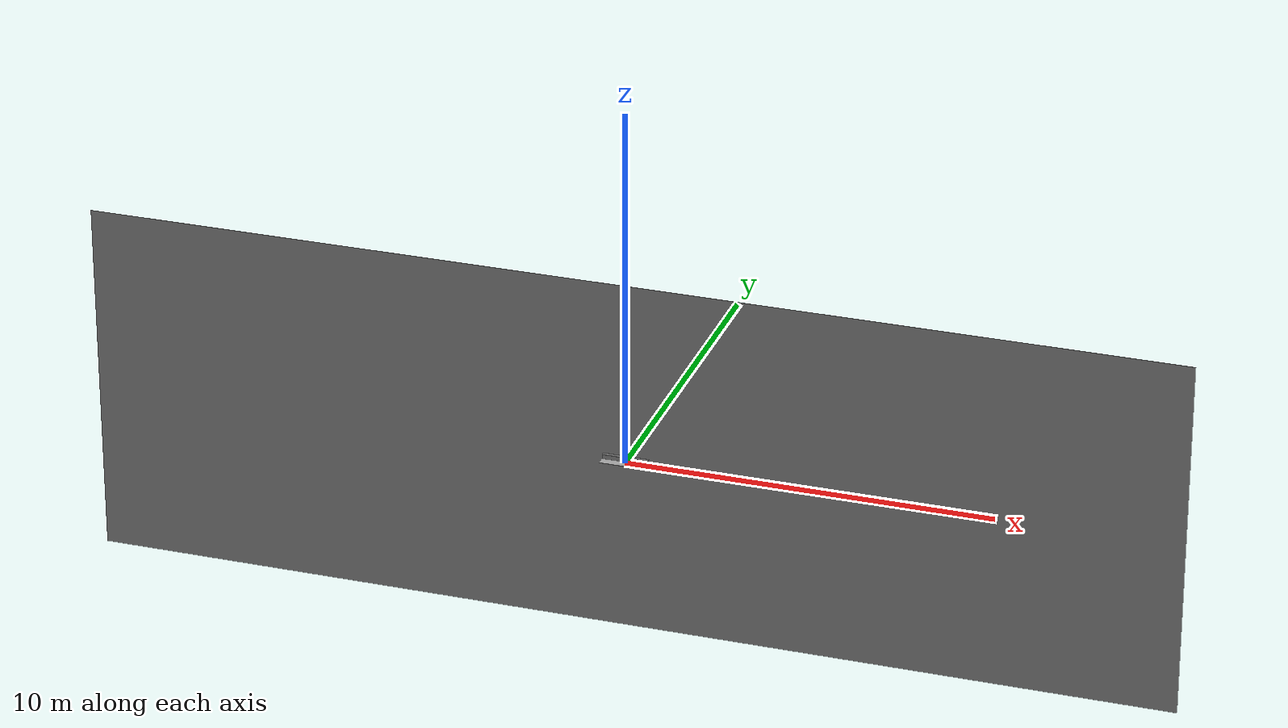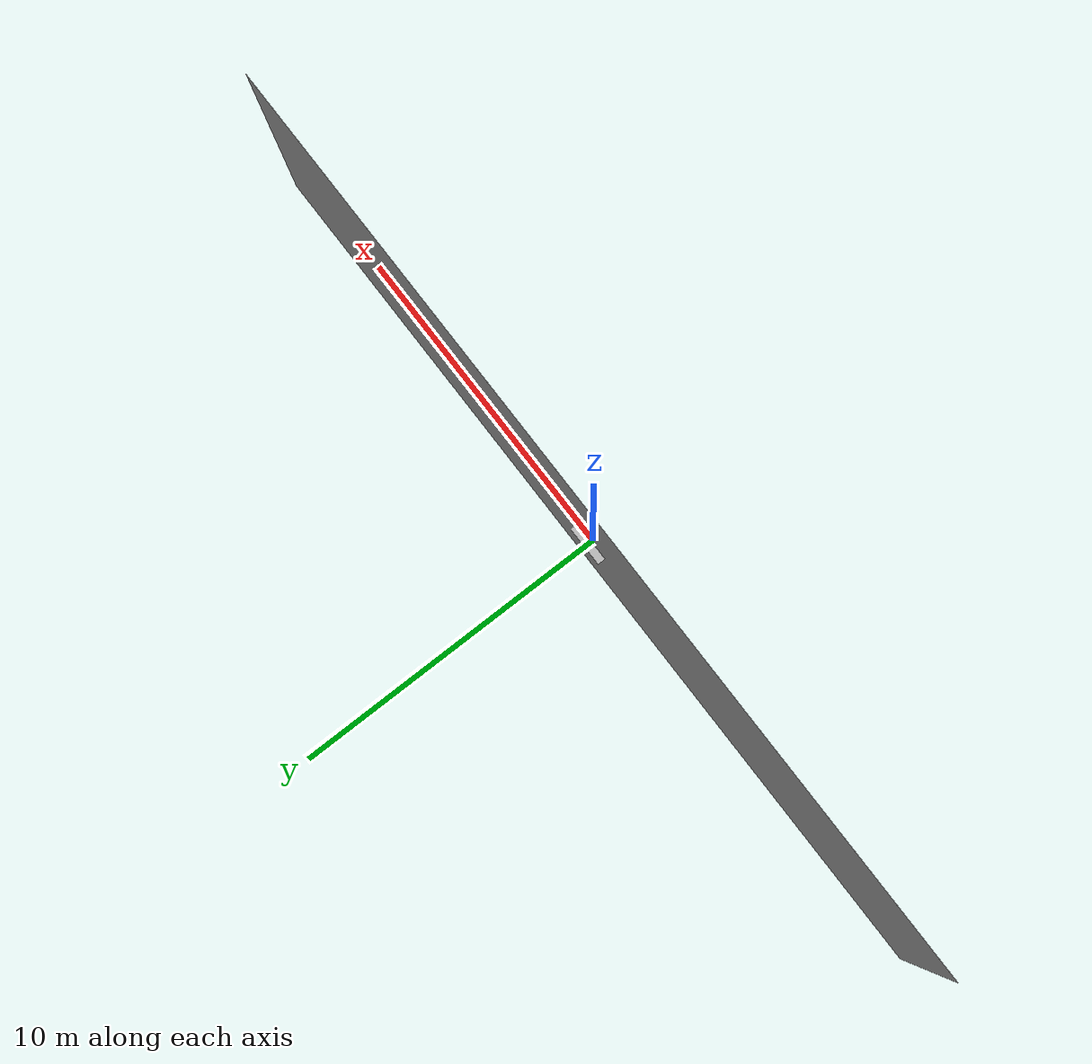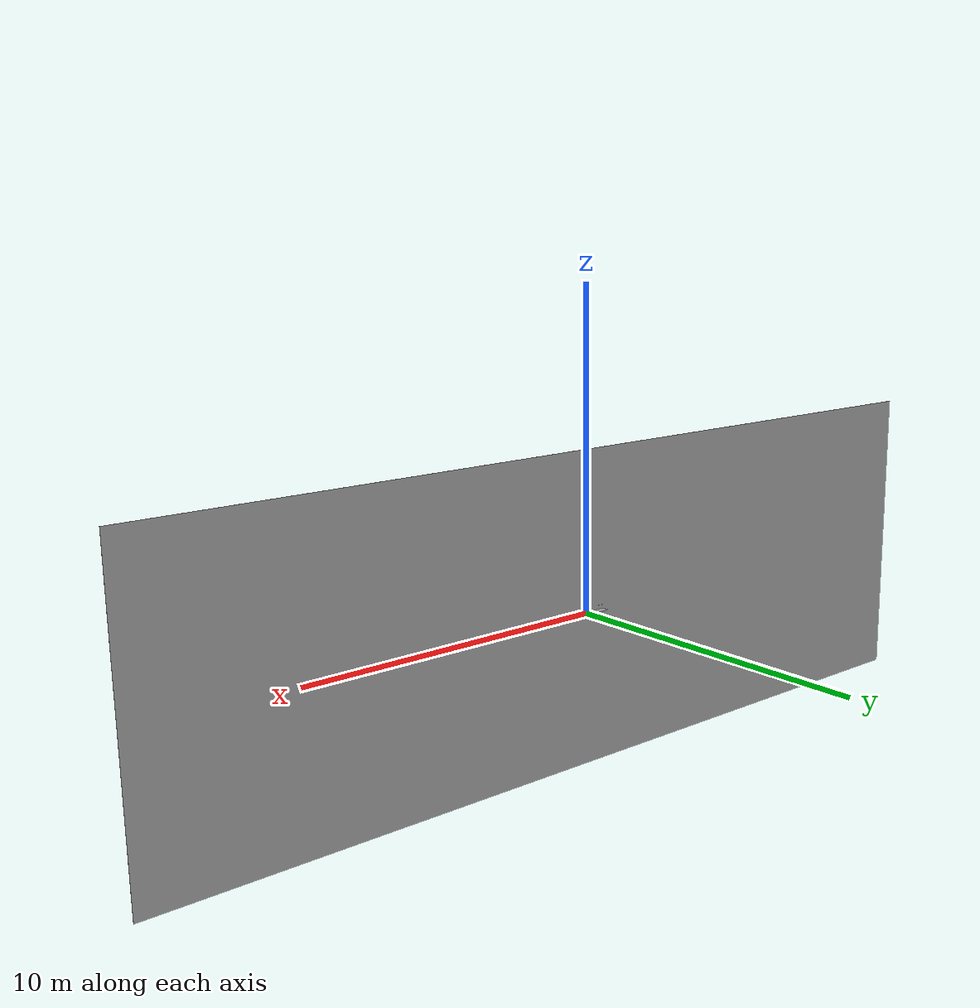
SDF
<?xml version='1.0'?>
<sdf version='1.6'>
  <model name='rockwall'>
    <link name='link'>
      <pose frame=''>0 0 0 0 -0 0</pose>
      <inertial>
        <mass>10</mass>
        <pose frame=''>0 0 0.08974 0 -0 0</pose>
        <inertia>
          <ixx>0.327091</ixx>
          <ixy>0</ixy>
          <ixz>0</ixz>
          <iyy>1.37417</iyy>
          <iyz>0</iyz>
          <izz>1.64109</izz>
        </inertia>
      </inertial>
      <self_collide>0</self_collide>
      <kinematic>0</kinematic>
      <gravity>1</gravity>
      <visual name='ModelPreview_1::link::visual_4'>
        <pose frame=''>0 -0.00249 0.18252 0 -0 0</pose>
        <geometry>
          <box>
            <size>1.27 0.1143 0.00462</size>
          </box>
        </geometry>
        <material>
          <ambient>0.46 0.46 0.46 1</ambient>
          <diffuse>0.46 0.46 0.46 1</diffuse>
          <specular>0 0 0 1</specular>
          <emissive>0 0 0 1</emissive>
          <script>
            <name>ModelPreview_1::link::top_MATERIAL_</name>
            <uri>__default__</uri>
          </script>
          <shader type='vertex'>
            <normal_map>__default__</normal_map>
          </shader>
        </material>
        <cast_shadows>1</cast_shadows>
        <transparency>0</transparency>
      </visual>
      <visual name='ModelPreview_1::link::visual_7'>
        <pose frame=''>0 -0.00249 0.18252 0 -0 0</pose>
        <geometry>
          <box>
            <size>1.27 0.1143 0.00462</size>
          </box>
        </geometry>
        <material>
          <ambient>0.46 0.46 0.46 1</ambient>
          <diffuse>0.46 0.46 0.46 1</diffuse>
          <specular>0 0 0 1</specular>
          <emissive>0 0 0 1</emissive>
          <script>
            <name>ModelPreview_1::link::top_MATERIAL_</name>
            <uri>__default__</uri>
          </script>
          <shader type='vertex'>
            <normal_map>__default__</normal_map>
          </shader>
        </material>
        <cast_shadows>1</cast_shadows>
        <transparency>0</transparency>
      </visual>
      <visual name='ModelPreview_1::link::visual_6'>
        <pose frame=''>0 -0.00249 0.18252 0 -0 0</pose>
        <geometry>
          <box>
            <size>1.27 0.1143 0.00462</size>
          </box>
        </geometry>
        <material>
          <ambient>0.46 0.46 0.46 1</ambient>
          <diffuse>0.46 0.46 0.46 1</diffuse>
          <specular>0 0 0 1</specular>
          <emissive>0 0 0 1</emissive>
          <script>
            <name>ModelPreview_1::link::top_MATERIAL_</name>
            <uri>__default__</uri>
          </script>
          <shader type='vertex'>
            <normal_map>__default__</normal_map>
          </shader>
        </material>
        <cast_shadows>1</cast_shadows>
        <transparency>0</transparency>
      </visual>
      <visual name='ModelPreview_1::link::visual_5'>
        <pose frame=''>0 -0.00249 0.18252 0 -0 0</pose>
        <geometry>
          <box>
            <size>1.27 0.1143 0.00462</size>
          </box>
        </geometry>
        <material>
          <ambient>0.46 0.46 0.46 1</ambient>
          <diffuse>0.46 0.46 0.46 1</diffuse>
          <specular>0 0 0 1</specular>
          <emissive>0 0 0 1</emissive>
          <script>
            <name>ModelPreview_1::link::top_MATERIAL_</name>
            <uri>__default__</uri>
          </script>
          <shader type='vertex'>
            <normal_map>__default__</normal_map>
          </shader>
        </material>
        <cast_shadows>1</cast_shadows>
        <transparency>0</transparency>
      </visual>
      <visual name='platform'>
        <pose frame=''>0 0 0.06432 0 -0 0</pose>
        <geometry>
          <box>
            <size>1.27 0.5969 0.003175</size>
          </box>
        </geometry>
        <cast_shadows>1</cast_shadows>
        <transparency>0</transparency>
        <material>
          <shader type='vertex'>
            <normal_map>__default__</normal_map>
          </shader>
        </material>
      </visual>
      <visual name='ModelPreview_1::link::visual_8'>
        <pose frame=''>0 -0.00249 0.18252 0 -0 0</pose>
        <geometry>
          <box>
            <size>1.27 0.1143 0.00462</size>
          </box>
        </geometry>
        <material>
          <ambient>0.46 0.46 0.46 1</ambient>
          <diffuse>0.46 0.46 0.46 1</diffuse>
          <specular>0 0 0 1</specular>
          <emissive>0 0 0 1</emissive>
          <script>
            <name>ModelPreview_1::link::top_MATERIAL_</name>
            <uri>__default__</uri>
          </script>
          <shader type='vertex'>
            <normal_map>__default__</normal_map>
          </shader>
        </material>
        <cast_shadows>1</cast_shadows>
        <transparency>0</transparency>
      </visual>
      <visual name='ModelPreview_1::link::visual_9'>
        <pose frame=''>0 -0.00249 0.18252 0 -0 0</pose>
        <geometry>
          <box>
            <size>1.27 0.1143 0.00462</size>
          </box>
        </geometry>
        <material>
          <ambient>0.46 0.46 0.46 1</ambient>
          <diffuse>0.46 0.46 0.46 1</diffuse>
          <specular>0 0 0 1</specular>
          <emissive>0 0 0 1</emissive>
          <script>
            <name>ModelPreview_1::link::top_MATERIAL_</name>
            <uri>__default__</uri>
          </script>
          <shader type='vertex'>
            <normal_map>__default__</normal_map>
          </shader>
        </material>
        <cast_shadows>1</cast_shadows>
        <transparency>0</transparency>
      </visual>
      <visual name='up1'>
        <pose frame=''>0 0.05166 0.12537 0 -0 0</pose>
        <geometry>
          <box>
            <size>30 0.00462 10</size>
          </box>
        </geometry>
        <material>
          <ambient>0.46 0.46 0.46 1</ambient>
          <diffuse>0.46 0.46 0.46 1</diffuse>
          <specular>0 0 0 1</specular>
          <emissive>0 0 0 1</emissive>
          <script>
            <name>ModelPreview_1::link::up1_MATERIAL_</name>
            <uri>__default__</uri>
          </script>
          <shader type='vertex'>
            <normal_map>__default__</normal_map>
          </shader>
        </material>
        <cast_shadows>1</cast_shadows>
        <transparency>0</transparency>
      </visual>
      <visual name='up2'>
        <pose frame=''>0 -0.05801 0.12537 0 -0 0</pose>
        <geometry>
          <box>
            <size>1.27 0.00462 0.11892</size>
          </box>
        </geometry>
        <material>
          <ambient>0.46 0.46 0.46 1</ambient>
          <diffuse>0.46 0.46 0.46 1</diffuse>
          <specular>0 0 0 1</specular>
          <emissive>0 0 0 1</emissive>
          <script>
            <name>ModelPreview_1::link::up2_MATERIAL_</name>
            <uri>__default__</uri>
          </script>
          <shader type='vertex'>
            <normal_map>__default__</normal_map>
          </shader>
        </material>
        <cast_shadows>1</cast_shadows>
        <transparency>0</transparency>
      </visual>
      <visual name='top'>
        <pose frame=''>0 -0.00249 0.18252 0 -0 0</pose>
        <geometry>
          <box>
            <size>1.27 0.1143 0.00462</size>
          </box>
        </geometry>
        <material>
          <ambient>0.46 0.46 0.46 1</ambient>
          <diffuse>0.46 0.46 0.46 1</diffuse>
          <specular>0 0 0 1</specular>
          <emissive>0 0 0 1</emissive>
          <script>
            <name>ModelPreview_1::link::top_MATERIAL_</name>
            <uri>__default__</uri>
          </script>
          <shader type='vertex'>
            <normal_map>__default__</normal_map>
          </shader>
        </material>
        <cast_shadows>1</cast_shadows>
        <transparency>0</transparency>
      </visual>
      <collision name='top'>
        <laser_retro>0</laser_retro>
        <max_contacts>10</max_contacts>
        <pose frame=''>0 -0.00249 0.18252 0 -0 0</pose>
        <geometry>
          <box>
            <size>1.27 0.1143 0.00462</size>
          </box>
        </geometry>
        <surface>
          <friction>
            <ode>
              <mu>1</mu>
              <mu2>1</mu2>
              <fdir1>0 0 0</fdir1>
              <slip1>0</slip1>
              <slip2>0</slip2>
            </ode>
            <torsional>
              <coefficient>1</coefficient>
              <patch_radius>0</patch_radius>
              <surface_radius>0</surface_radius>
              <use_patch_radius>1</use_patch_radius>
              <ode>
                <slip>0</slip>
              </ode>
            </torsional>
          </friction>
          <bounce>
            <restitution_coefficient>0</restitution_coefficient>
            <threshold>1e+06</threshold>
          </bounce>
          <contact>
            <collide_without_contact>0</collide_without_contact>
            <collide_without_contact_bitmask>1</collide_without_contact_bitmask>
            <collide_bitmask>1</collide_bitmask>
            <ode>
              <soft_cfm>0</soft_cfm>
              <soft_erp>0.2</soft_erp>
              <kp>1e+13</kp>
              <kd>1</kd>
              <max_vel>0.01</max_vel>
              <min_depth>0</min_depth>
            </ode>
            <bullet>
              <split_impulse>1</split_impulse>
              <split_impulse_penetration_threshold>-0.01</split_impulse_penetration_threshold>
              <soft_cfm>0</soft_cfm>
              <soft_erp>0.2</soft_erp>
              <kp>1e+13</kp>
              <kd>1</kd>
            </bullet>
          </contact>
        </surface>
      </collision>
      <collision name='platform'>
        <laser_retro>0</laser_retro>
        <max_contacts>10</max_contacts>
        <pose frame=''>0 0 0.06432 0 -0 0</pose>
        <geometry>
          <box>
            <size>1.27 0.5969 0.003175</size>
          </box>
        </geometry>
        <surface>
          <friction>
            <ode>
              <mu>1</mu>
              <mu2>1</mu2>
              <fdir1>0 0 0</fdir1>
              <slip1>0</slip1>
              <slip2>0</slip2>
            </ode>
            <torsional>
              <coefficient>1</coefficient>
              <patch_radius>0</patch_radius>
              <surface_radius>0</surface_radius>
              <use_patch_radius>1</use_patch_radius>
              <ode>
                <slip>0</slip>
              </ode>
            </torsional>
          </friction>
          <bounce>
            <restitution_coefficient>0</restitution_coefficient>
            <threshold>1e+06</threshold>
          </bounce>
          <contact>
            <collide_without_contact>0</collide_without_contact>
            <collide_without_contact_bitmask>1</collide_without_contact_bitmask>
            <collide_bitmask>1</collide_bitmask>
            <ode>
              <soft_cfm>0</soft_cfm>
              <soft_erp>0.2</soft_erp>
              <kp>1e+13</kp>
              <kd>1</kd>
              <max_vel>0.01</max_vel>
              <min_depth>0</min_depth>
            </ode>
            <bullet>
              <split_impulse>1</split_impulse>
              <split_impulse_penetration_threshold>-0.01</split_impulse_penetration_threshold>
              <soft_cfm>0</soft_cfm>
              <soft_erp>0.2</soft_erp>
              <kp>1e+13</kp>
              <kd>1</kd>
            </bullet>
          </contact>
        </surface>
      </collision>
      <collision name='up2'>
        <laser_retro>0</laser_retro>
        <max_contacts>10</max_contacts>
        <pose frame=''>0 -0.05801 0.12537 0 -0 0</pose>
        <geometry>
          <box>
            <size>1.27 0.00462 0.11892</size>
          </box>
        </geometry>
        <surface>
          <friction>
            <ode>
              <mu>1</mu>
              <mu2>1</mu2>
              <fdir1>0 0 0</fdir1>
              <slip1>0</slip1>
              <slip2>0</slip2>
            </ode>
            <torsional>
              <coefficient>1</coefficient>
              <patch_radius>0</patch_radius>
              <surface_radius>0</surface_radius>
              <use_patch_radius>1</use_patch_radius>
              <ode>
                <slip>0</slip>
              </ode>
            </torsional>
          </friction>
          <bounce>
            <restitution_coefficient>0</restitution_coefficient>
            <threshold>1e+06</threshold>
          </bounce>
          <contact>
            <collide_without_contact>0</collide_without_contact>
            <collide_without_contact_bitmask>1</collide_without_contact_bitmask>
            <collide_bitmask>1</collide_bitmask>
            <ode>
              <soft_cfm>0</soft_cfm>
              <soft_erp>0.2</soft_erp>
              <kp>1e+13</kp>
              <kd>1</kd>
              <max_vel>0.01</max_vel>
              <min_depth>0</min_depth>
            </ode>
            <bullet>
              <split_impulse>1</split_impulse>
              <split_impulse_penetration_threshold>-0.01</split_impulse_penetration_threshold>
              <soft_cfm>0</soft_cfm>
              <soft_erp>0.2</soft_erp>
              <kp>1e+13</kp>
              <kd>1</kd>
            </bullet>
          </contact>
        </surface>
      </collision>
      <collision name='up1'>
        <laser_retro>0</laser_retro>
        <max_contacts>10</max_contacts>
        <pose frame=''>0 0.05166 0.12537 0 -0 0</pose>
        <geometry>
          <box>
            <size>30 0.00462 10</size>
          </box>
        </geometry>
        <surface>
          <friction>
            <ode>
              <mu>1</mu>
              <mu2>1</mu2>
              <fdir1>0 0 0</fdir1>
              <slip1>0</slip1>
              <slip2>0</slip2>
            </ode>
            <torsional>
              <coefficient>1</coefficient>
              <patch_radius>0</patch_radius>
              <surface_radius>0</surface_radius>
              <use_patch_radius>1</use_patch_radius>
              <ode>
                <slip>0</slip>
              </ode>
            </torsional>
          </friction>
          <bounce>
            <restitution_coefficient>0</restitution_coefficient>
            <threshold>1e+06</threshold>
          </bounce>
          <contact>
            <collide_without_contact>0</collide_without_contact>
            <collide_without_contact_bitmask>1</collide_without_contact_bitmask>
            <collide_bitmask>1</collide_bitmask>
            <ode>
              <soft_cfm>0</soft_cfm>
              <soft_erp>0.2</soft_erp>
              <kp>1e+13</kp>
              <kd>1</kd>
              <max_vel>0.01</max_vel>
              <min_depth>0</min_depth>
            </ode>
            <bullet>
              <split_impulse>1</split_impulse>
              <split_impulse_penetration_threshold>-0.01</split_impulse_penetration_threshold>
              <soft_cfm>0</soft_cfm>
              <soft_erp>0.2</soft_erp>
              <kp>1e+13</kp>
              <kd>1</kd>
            </bullet>
          </contact>
        </surface>
      </collision>
    </link>
    <static>1</static>
    <allow_auto_disable>1</allow_auto_disable>
  </model>
</sdf>
